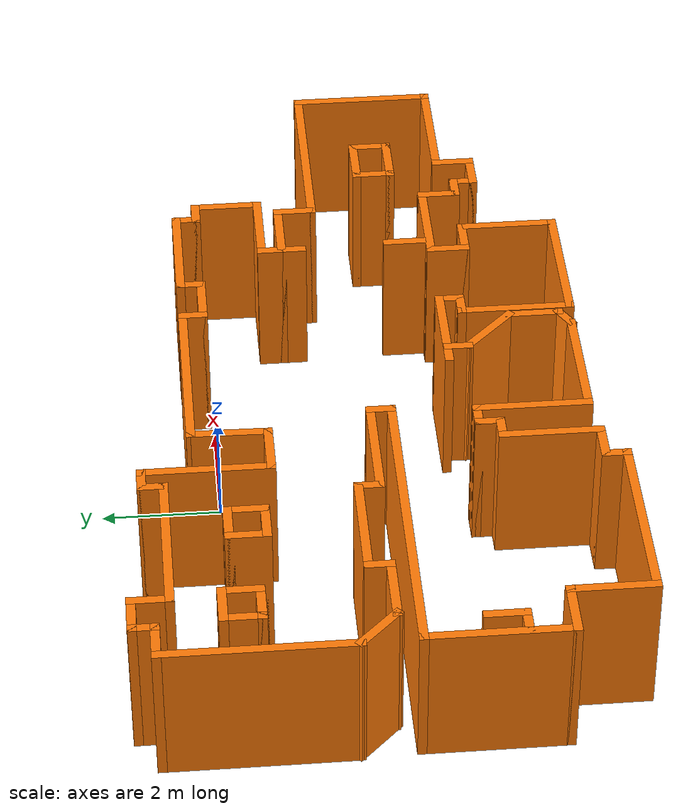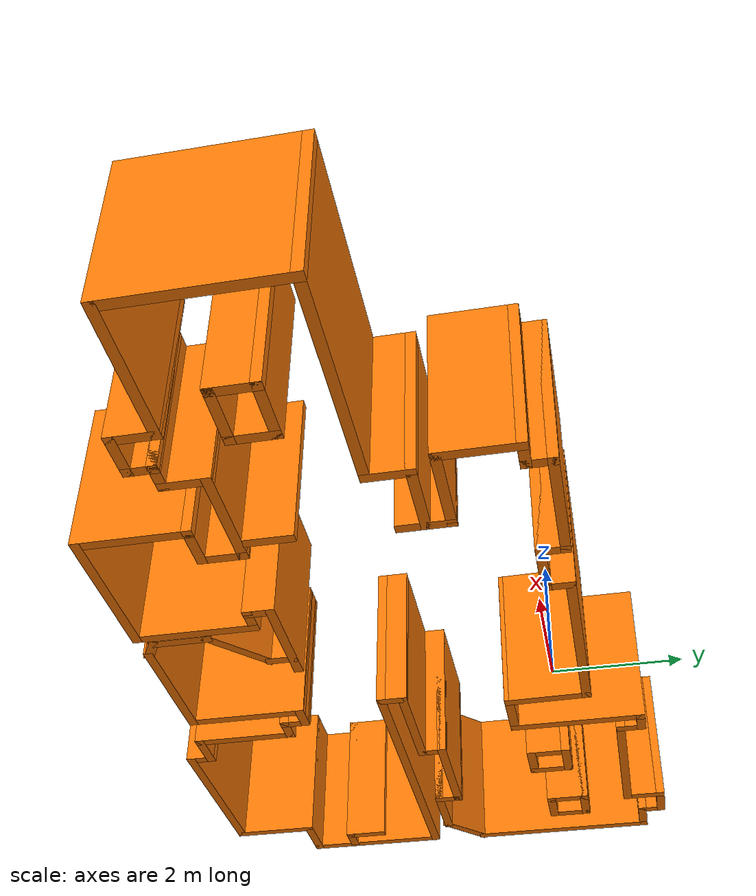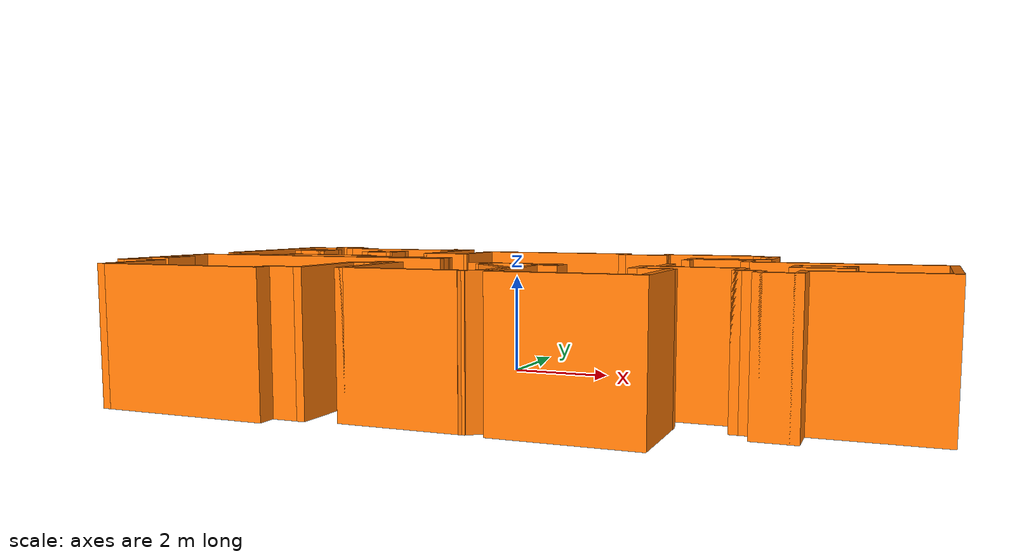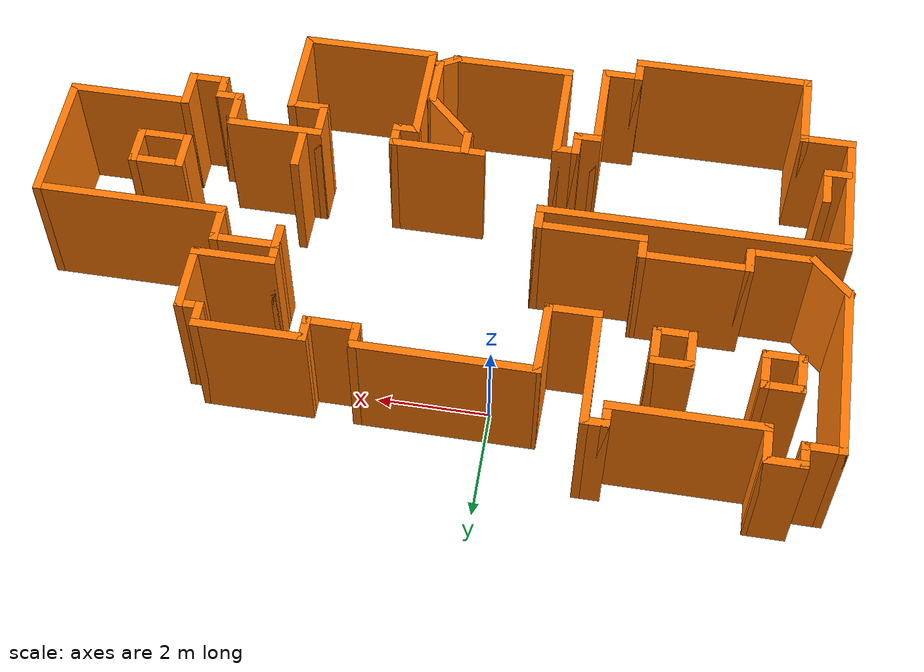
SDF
<?xml version='1.0'?>
<sdf version='1.6'>
  <model name='map_88'>
    <pose frame=''>1.27193 -2.48985 0 0 -0 0</pose>
    <link name='Wall_1'>
      <collision name='Wall_1_Collision'>
        <geometry>
          <box>
            <size>0.5 0.15 2.5</size>
          </box>
        </geometry>
        <pose frame=''>0 0 1.25 0 -0 0</pose>
      </collision>
      <visual name='Wall_1_Visual'>
        <pose frame=''>0 0 1.25 0 -0 0</pose>
        <geometry>
          <box>
            <size>0.5 0.15 2.5</size>
          </box>
        </geometry>
        <material>
          <script>
            <uri>file://media/materials/scripts/gazebo.material</uri>
            <name>Gazebo/Grey</name>
          </script>
          <ambient>0.996078 0.47451 0.0196078 1</ambient>
        </material>
        <meta>
          <layer>0</layer>
        </meta>
      </visual>
      <pose frame=''>-3.14645 3.80052 0 0 -0 3.14159</pose>
    </link>
    <link name='Wall_10'>
      <collision name='Wall_10_Collision'>
        <geometry>
          <box>
            <size>1.25 0.15 2.5</size>
          </box>
        </geometry>
        <pose frame=''>0 0 1.25 0 -0 0</pose>
      </collision>
      <visual name='Wall_10_Visual'>
        <pose frame=''>0 0 1.25 0 -0 0</pose>
        <geometry>
          <box>
            <size>1.25 0.15 2.5</size>
          </box>
        </geometry>
        <material>
          <script>
            <uri>file://media/materials/scripts/gazebo.material</uri>
            <name>Gazebo/Grey</name>
          </script>
          <ambient>0.996078 0.47451 0.0196078 1</ambient>
        </material>
        <meta>
          <layer>0</layer>
        </meta>
      </visual>
      <pose frame=''>-5.97041 -0.00052 0 0 -0 0</pose>
    </link>
    <link name='Wall_100'>
      <collision name='Wall_100_Collision'>
        <geometry>
          <box>
            <size>0.75 0.15 2.5</size>
          </box>
        </geometry>
        <pose frame=''>0 0 1.25 0 -0 0</pose>
      </collision>
      <visual name='Wall_100_Visual'>
        <pose frame=''>0 0 1.25 0 -0 0</pose>
        <geometry>
          <box>
            <size>0.75 0.15 2.5</size>
          </box>
        </geometry>
        <material>
          <script>
            <uri>file://media/materials/scripts/gazebo.material</uri>
            <name>Gazebo/Grey</name>
          </script>
          <ambient>0.996078 0.47451 0.0196078 1</ambient>
        </material>
        <meta>
          <layer>0</layer>
        </meta>
      </visual>
      <pose frame=''>-4.27435 2.46761 0 0 -0 3.14159</pose>
    </link>
    <link name='Wall_11'>
      <collision name='Wall_11_Collision'>
        <geometry>
          <box>
            <size>0.5 0.15 2.5</size>
          </box>
        </geometry>
        <pose frame=''>0 0 1.25 0 -0 0</pose>
      </collision>
      <visual name='Wall_11_Visual'>
        <pose frame=''>0 0 1.25 0 -0 0</pose>
        <geometry>
          <box>
            <size>0.5 0.15 2.5</size>
          </box>
        </geometry>
        <material>
          <script>
            <uri>file://media/materials/scripts/gazebo.material</uri>
            <name>Gazebo/Grey</name>
          </script>
          <ambient>0.996078 0.47451 0.0196078 1</ambient>
        </material>
        <meta>
          <layer>0</layer>
        </meta>
      </visual>
      <pose frame=''>-5.42041 0.17448 0 0 -0 1.5708</pose>
    </link>
    <link name='Wall_110'>
      <collision name='Wall_110_Collision'>
        <geometry>
          <box>
            <size>1.75 0.15 2.5</size>
          </box>
        </geometry>
        <pose frame=''>0 0 1.25 0 -0 0</pose>
      </collision>
      <visual name='Wall_110_Visual'>
        <pose frame=''>0 0 1.25 0 -0 0</pose>
        <geometry>
          <box>
            <size>1.75 0.15 2.5</size>
          </box>
        </geometry>
        <material>
          <script>
            <uri>file://media/materials/scripts/gazebo.material</uri>
            <name>Gazebo/Grey</name>
          </script>
          <ambient>0.996078 0.47451 0.0196078 1</ambient>
        </material>
        <meta>
          <layer>0</layer>
        </meta>
      </visual>
      <pose frame=''>-2.52041 -2.90052 0 0 -0 1.5708</pose>
    </link>
    <link name='Wall_111'>
      <collision name='Wall_111_Collision'>
        <geometry>
          <box>
            <size>0.5 0.15 2.5</size>
          </box>
        </geometry>
        <pose frame=''>0 0 1.25 0 -0 0</pose>
      </collision>
      <visual name='Wall_111_Visual'>
        <pose frame=''>0 0 1.25 0 -0 0</pose>
        <geometry>
          <box>
            <size>0.5 0.15 2.5</size>
          </box>
        </geometry>
        <material>
          <script>
            <uri>file://media/materials/scripts/gazebo.material</uri>
            <name>Gazebo/Grey</name>
          </script>
          <ambient>0.996078 0.47451 0.0196078 1</ambient>
        </material>
        <meta>
          <layer>0</layer>
        </meta>
      </visual>
      <pose frame=''>-2.34541 -2.10052 0 0 -0 0</pose>
    </link>
    <link name='Wall_112'>
      <collision name='Wall_112_Collision'>
        <geometry>
          <box>
            <size>0.5 0.15 2.5</size>
          </box>
        </geometry>
        <pose frame=''>0 0 1.25 0 -0 0</pose>
      </collision>
      <visual name='Wall_112_Visual'>
        <pose frame=''>0 0 1.25 0 -0 0</pose>
        <geometry>
          <box>
            <size>0.5 0.15 2.5</size>
          </box>
        </geometry>
        <material>
          <script>
            <uri>file://media/materials/scripts/gazebo.material</uri>
            <name>Gazebo/Grey</name>
          </script>
          <ambient>0.996078 0.47451 0.0196078 1</ambient>
        </material>
        <meta>
          <layer>0</layer>
        </meta>
      </visual>
      <pose frame=''>-2.17041 -1.92552 0 0 -0 1.5708</pose>
    </link>
    <link name='Wall_113'>
      <collision name='Wall_113_Collision'>
        <geometry>
          <box>
            <size>0.5 0.15 2.5</size>
          </box>
        </geometry>
        <pose frame=''>0 0 1.25 0 -0 0</pose>
      </collision>
      <visual name='Wall_113_Visual'>
        <pose frame=''>0 0 1.25 0 -0 0</pose>
        <geometry>
          <box>
            <size>0.5 0.15 2.5</size>
          </box>
        </geometry>
        <material>
          <script>
            <uri>file://media/materials/scripts/gazebo.material</uri>
            <name>Gazebo/Grey</name>
          </script>
          <ambient>0.996078 0.47451 0.0196078 1</ambient>
        </material>
        <meta>
          <layer>0</layer>
        </meta>
      </visual>
      <pose frame=''>-1.99541 -1.75052 0 0 -0 0</pose>
    </link>
    <link name='Wall_114'>
      <collision name='Wall_114_Collision'>
        <geometry>
          <box>
            <size>2 0.15 2.5</size>
          </box>
        </geometry>
        <pose frame=''>0 0 1.25 0 -0 0</pose>
      </collision>
      <visual name='Wall_114_Visual'>
        <pose frame=''>0 0 1.25 0 -0 0</pose>
        <geometry>
          <box>
            <size>2 0.15 2.5</size>
          </box>
        </geometry>
        <material>
          <script>
            <uri>file://media/materials/scripts/gazebo.material</uri>
            <name>Gazebo/Grey</name>
          </script>
          <ambient>0.996078 0.47451 0.0196078 1</ambient>
        </material>
        <meta>
          <layer>0</layer>
        </meta>
      </visual>
      <pose frame=''>-1.82041 -2.67552 0 0 -0 -1.5708</pose>
    </link>
    <link name='Wall_12'>
      <collision name='Wall_12_Collision'>
        <geometry>
          <box>
            <size>2 0.15 2.5</size>
          </box>
        </geometry>
        <pose frame=''>0 0 1.25 0 -0 0</pose>
      </collision>
      <visual name='Wall_12_Visual'>
        <pose frame=''>0 0 1.25 0 -0 0</pose>
        <geometry>
          <box>
            <size>2 0.15 2.5</size>
          </box>
        </geometry>
        <material>
          <script>
            <uri>file://media/materials/scripts/gazebo.material</uri>
            <name>Gazebo/Grey</name>
          </script>
          <ambient>0.996078 0.47451 0.0196078 1</ambient>
        </material>
        <meta>
          <layer>0</layer>
        </meta>
      </visual>
      <pose frame=''>-4.49541 0.34948 0 0 -0 0</pose>
    </link>
    <link name='Wall_13'>
      <collision name='Wall_13_Collision'>
        <geometry>
          <box>
            <size>0.5 0.15 2.5</size>
          </box>
        </geometry>
        <pose frame=''>0 0 1.25 0 -0 0</pose>
      </collision>
      <visual name='Wall_13_Visual'>
        <pose frame=''>0 0 1.25 0 -0 0</pose>
        <geometry>
          <box>
            <size>0.5 0.15 2.5</size>
          </box>
        </geometry>
        <material>
          <script>
            <uri>file://media/materials/scripts/gazebo.material</uri>
            <name>Gazebo/Grey</name>
          </script>
          <ambient>0.996078 0.47451 0.0196078 1</ambient>
        </material>
        <meta>
          <layer>0</layer>
        </meta>
      </visual>
      <pose frame=''>-3.57041 0.17448 0 0 -0 -1.5708</pose>
    </link>
    <link name='Wall_14'>
      <collision name='Wall_14_Collision'>
        <geometry>
          <box>
            <size>2 0.15 2.5</size>
          </box>
        </geometry>
        <pose frame=''>0 0 1.25 0 -0 0</pose>
      </collision>
      <visual name='Wall_14_Visual'>
        <pose frame=''>0 0 1.25 0 -0 0</pose>
        <geometry>
          <box>
            <size>2 0.15 2.5</size>
          </box>
        </geometry>
        <material>
          <script>
            <uri>file://media/materials/scripts/gazebo.material</uri>
            <name>Gazebo/Grey</name>
          </script>
          <ambient>0.996078 0.47451 0.0196078 1</ambient>
        </material>
        <meta>
          <layer>0</layer>
        </meta>
      </visual>
      <pose frame=''>-2.64541 -0.00052 0 0 -0 0</pose>
    </link>
    <link name='Wall_15'>
      <collision name='Wall_15_Collision'>
        <geometry>
          <box>
            <size>0.5 0.15 2.5</size>
          </box>
        </geometry>
        <pose frame=''>0 0 1.25 0 -0 0</pose>
      </collision>
      <visual name='Wall_15_Visual'>
        <pose frame=''>0 0 1.25 0 -0 0</pose>
        <geometry>
          <box>
            <size>0.5 0.15 2.5</size>
          </box>
        </geometry>
        <material>
          <script>
            <uri>file://media/materials/scripts/gazebo.material</uri>
            <name>Gazebo/Grey</name>
          </script>
          <ambient>0.996078 0.47451 0.0196078 1</ambient>
        </material>
        <meta>
          <layer>0</layer>
        </meta>
      </visual>
      <pose frame=''>-1.72041 -0.17552 0 0 -0 -1.5708</pose>
    </link>
    <link name='Wall_16'>
      <collision name='Wall_16_Collision'>
        <geometry>
          <box>
            <size>5.5 0.15 2.5</size>
          </box>
        </geometry>
        <pose frame=''>0 0 1.25 0 -0 0</pose>
      </collision>
      <visual name='Wall_16_Visual'>
        <pose frame=''>0 0 1.25 0 -0 0</pose>
        <geometry>
          <box>
            <size>5.5 0.15 2.5</size>
          </box>
        </geometry>
        <material>
          <script>
            <uri>file://media/materials/scripts/gazebo.material</uri>
            <name>Gazebo/Grey</name>
          </script>
          <ambient>0.996078 0.47451 0.0196078 1</ambient>
        </material>
        <meta>
          <layer>0</layer>
        </meta>
      </visual>
      <pose frame=''>-4.39541 -0.35052 0 0 -0 3.14159</pose>
    </link>
    <link name='Wall_17'>
      <collision name='Wall_17_Collision'>
        <geometry>
          <box>
            <size>2.5 0.15 2.5</size>
          </box>
        </geometry>
        <pose frame=''>0 0 1.25 0 -0 0</pose>
      </collision>
      <visual name='Wall_17_Visual'>
        <pose frame=''>0 0 1.25 0 -0 0</pose>
        <geometry>
          <box>
            <size>2.5 0.15 2.5</size>
          </box>
        </geometry>
        <material>
          <script>
            <uri>file://media/materials/scripts/gazebo.material</uri>
            <name>Gazebo/Grey</name>
          </script>
          <ambient>0.996078 0.47451 0.0196078 1</ambient>
        </material>
        <meta>
          <layer>0</layer>
        </meta>
      </visual>
      <pose frame=''>-7.07041 -1.52552 0 0 -0 -1.5708</pose>
    </link>
    <link name='Wall_18'>
      <collision name='Wall_18_Collision'>
        <geometry>
          <box>
            <size>1 0.15 2.5</size>
          </box>
        </geometry>
        <pose frame=''>0 0 1.25 0 -0 0</pose>
      </collision>
      <visual name='Wall_18_Visual'>
        <pose frame=''>0 0 1.25 0 -0 0</pose>
        <geometry>
          <box>
            <size>1 0.15 2.5</size>
          </box>
        </geometry>
        <material>
          <script>
            <uri>file://media/materials/scripts/gazebo.material</uri>
            <name>Gazebo/Grey</name>
          </script>
          <ambient>0.996078 0.47451 0.0196078 1</ambient>
        </material>
        <meta>
          <layer>0</layer>
        </meta>
      </visual>
      <pose frame=''>-6.64541 -2.70052 0 0 -0 0</pose>
    </link>
    <link name='Wall_19'>
      <collision name='Wall_19_Collision'>
        <geometry>
          <box>
            <size>1.5 0.15 2.5</size>
          </box>
        </geometry>
        <pose frame=''>0 0 1.25 0 -0 0</pose>
      </collision>
      <visual name='Wall_19_Visual'>
        <pose frame=''>0 0 1.25 0 -0 0</pose>
        <geometry>
          <box>
            <size>1.5 0.15 2.5</size>
          </box>
        </geometry>
        <material>
          <script>
            <uri>file://media/materials/scripts/gazebo.material</uri>
            <name>Gazebo/Grey</name>
          </script>
          <ambient>0.996078 0.47451 0.0196078 1</ambient>
        </material>
        <meta>
          <layer>0</layer>
        </meta>
      </visual>
      <pose frame=''>-6.22041 -3.37552 0 0 -0 -1.5708</pose>
    </link>
    <link name='Wall_2'>
      <collision name='Wall_2_Collision'>
        <geometry>
          <box>
            <size>0.5 0.15 2.5</size>
          </box>
        </geometry>
        <pose frame=''>0 0 1.25 0 -0 0</pose>
      </collision>
      <visual name='Wall_2_Visual'>
        <pose frame=''>0 0 1.25 0 -0 0</pose>
        <geometry>
          <box>
            <size>0.5 0.15 2.5</size>
          </box>
        </geometry>
        <material>
          <script>
            <uri>file://media/materials/scripts/gazebo.material</uri>
            <name>Gazebo/Grey</name>
          </script>
          <ambient>0.996078 0.47451 0.0196078 1</ambient>
        </material>
        <meta>
          <layer>0</layer>
        </meta>
      </visual>
      <pose frame=''>-3.32145 3.62552 0 0 -0 -1.5708</pose>
    </link>
    <link name='Wall_20'>
      <collision name='Wall_20_Collision'>
        <geometry>
          <box>
            <size>3.25 0.15 2.5</size>
          </box>
        </geometry>
        <pose frame=''>0 0 1.25 0 -0 0</pose>
      </collision>
      <visual name='Wall_20_Visual'>
        <pose frame=''>0 0 1.25 0 -0 0</pose>
        <geometry>
          <box>
            <size>3.25 0.15 2.5</size>
          </box>
        </geometry>
        <material>
          <script>
            <uri>file://media/materials/scripts/gazebo.material</uri>
            <name>Gazebo/Grey</name>
          </script>
          <ambient>0.996078 0.47451 0.0196078 1</ambient>
        </material>
        <meta>
          <layer>0</layer>
        </meta>
      </visual>
      <pose frame=''>-4.67041 -4.05052 0 0 -0 0</pose>
    </link>
    <link name='Wall_21'>
      <collision name='Wall_21_Collision'>
        <geometry>
          <box>
            <size>0.5 0.15 2.5</size>
          </box>
        </geometry>
        <pose frame=''>0 0 1.25 0 -0 0</pose>
      </collision>
      <visual name='Wall_21_Visual'>
        <pose frame=''>0 0 1.25 0 -0 0</pose>
        <geometry>
          <box>
            <size>0.5 0.15 2.5</size>
          </box>
        </geometry>
        <material>
          <script>
            <uri>file://media/materials/scripts/gazebo.material</uri>
            <name>Gazebo/Grey</name>
          </script>
          <ambient>0.996078 0.47451 0.0196078 1</ambient>
        </material>
        <meta>
          <layer>0</layer>
        </meta>
      </visual>
      <pose frame=''>-3.12041 -3.87552 0 0 -0 1.5708</pose>
    </link>
    <link name='Wall_22'>
      <collision name='Wall_22_Collision'>
        <geometry>
          <box>
            <size>0.75 0.15 2.5</size>
          </box>
        </geometry>
        <pose frame=''>0 0 1.25 0 -0 0</pose>
      </collision>
      <visual name='Wall_22_Visual'>
        <pose frame=''>0 0 1.25 0 -0 0</pose>
        <geometry>
          <box>
            <size>0.75 0.15 2.5</size>
          </box>
        </geometry>
        <material>
          <script>
            <uri>file://media/materials/scripts/gazebo.material</uri>
            <name>Gazebo/Grey</name>
          </script>
          <ambient>0.996078 0.47451 0.0196078 1</ambient>
        </material>
        <meta>
          <layer>0</layer>
        </meta>
      </visual>
      <pose frame=''>-2.82041 -3.70052 0 0 -0 0</pose>
    </link>
    <link name='Wall_28'>
      <collision name='Wall_28_Collision'>
        <geometry>
          <box>
            <size>2.25 0.15 2.5</size>
          </box>
        </geometry>
        <pose frame=''>0 0 1.25 0 -0 0</pose>
      </collision>
      <visual name='Wall_28_Visual'>
        <pose frame=''>0 0 1.25 0 -0 0</pose>
        <geometry>
          <box>
            <size>2.25 0.15 2.5</size>
          </box>
        </geometry>
        <material>
          <script>
            <uri>file://media/materials/scripts/gazebo.material</uri>
            <name>Gazebo/Grey</name>
          </script>
          <ambient>0.996078 0.47451 0.0196078 1</ambient>
        </material>
        <meta>
          <layer>0</layer>
        </meta>
      </visual>
      <pose frame=''>-0.770411 -3.60052 0 0 -0 0</pose>
    </link>
    <link name='Wall_29'>
      <collision name='Wall_29_Collision'>
        <geometry>
          <box>
            <size>0.5 0.15 2.5</size>
          </box>
        </geometry>
        <pose frame=''>0 0 1.25 0 -0 0</pose>
      </collision>
      <visual name='Wall_29_Visual'>
        <pose frame=''>0 0 1.25 0 -0 0</pose>
        <geometry>
          <box>
            <size>0.5 0.15 2.5</size>
          </box>
        </geometry>
        <material>
          <script>
            <uri>file://media/materials/scripts/gazebo.material</uri>
            <name>Gazebo/Grey</name>
          </script>
          <ambient>0.996078 0.47451 0.0196078 1</ambient>
        </material>
        <meta>
          <layer>0</layer>
        </meta>
      </visual>
      <pose frame=''>0.431144 -3.51302 0 0 -0 0.523599</pose>
    </link>
    <link name='Wall_3'>
      <collision name='Wall_3_Collision'>
        <geometry>
          <box>
            <size>2.75 0.15 2.5</size>
          </box>
        </geometry>
        <pose frame=''>0 0 1.25 0 -0 0</pose>
      </collision>
      <visual name='Wall_3_Visual'>
        <pose frame=''>0 0 1.25 0 -0 0</pose>
        <geometry>
          <box>
            <size>2.75 0.15 2.5</size>
          </box>
        </geometry>
        <material>
          <script>
            <uri>file://media/materials/scripts/gazebo.material</uri>
            <name>Gazebo/Grey</name>
          </script>
          <ambient>0.996078 0.47451 0.0196078 1</ambient>
        </material>
        <meta>
          <layer>0</layer>
        </meta>
      </visual>
      <pose frame=''>-4.62145 3.45052 0 0 -0 3.14159</pose>
    </link>
    <link name='Wall_30'>
      <collision name='Wall_30_Collision'>
        <geometry>
          <box>
            <size>1 0.15 2.5</size>
          </box>
        </geometry>
        <pose frame=''>0 0 1.25 0 -0 0</pose>
      </collision>
      <visual name='Wall_30_Visual'>
        <pose frame=''>0 0 1.25 0 -0 0</pose>
        <geometry>
          <box>
            <size>1 0.15 2.5</size>
          </box>
        </geometry>
        <material>
          <script>
            <uri>file://media/materials/scripts/gazebo.material</uri>
            <name>Gazebo/Grey</name>
          </script>
          <ambient>0.996078 0.47451 0.0196078 1</ambient>
        </material>
        <meta>
          <layer>0</layer>
        </meta>
      </visual>
      <pose frame=''>0.582698 -3.00052 0 0 -0 1.5708</pose>
    </link>
    <link name='Wall_31'>
      <collision name='Wall_31_Collision'>
        <geometry>
          <box>
            <size>1.25 0.15 2.5</size>
          </box>
        </geometry>
        <pose frame=''>0 0 1.25 0 -0 0</pose>
      </collision>
      <visual name='Wall_31_Visual'>
        <pose frame=''>0 0 1.25 0 -0 0</pose>
        <geometry>
          <box>
            <size>1.25 0.15 2.5</size>
          </box>
        </geometry>
        <material>
          <script>
            <uri>file://media/materials/scripts/gazebo.material</uri>
            <name>Gazebo/Grey</name>
          </script>
          <ambient>0.996078 0.47451 0.0196078 1</ambient>
        </material>
        <meta>
          <layer>0</layer>
        </meta>
      </visual>
      <pose frame=''>0.193789 -2.18661 0 0 -0 2.35619</pose>
    </link>
    <link name='Wall_32'>
      <collision name='Wall_32_Collision'>
        <geometry>
          <box>
            <size>0.5 0.15 2.5</size>
          </box>
        </geometry>
        <pose frame=''>0 0 1.25 0 -0 0</pose>
      </collision>
      <visual name='Wall_32_Visual'>
        <pose frame=''>0 0 1.25 0 -0 0</pose>
        <geometry>
          <box>
            <size>0.5 0.15 2.5</size>
          </box>
        </geometry>
        <material>
          <script>
            <uri>file://media/materials/scripts/gazebo.material</uri>
            <name>Gazebo/Grey</name>
          </script>
          <ambient>0.996078 0.47451 0.0196078 1</ambient>
        </material>
        <meta>
          <layer>0</layer>
        </meta>
      </visual>
      <pose frame=''>-0.19512 -1.6227 0 0 -0 1.5708</pose>
    </link>
    <link name='Wall_34'>
      <collision name='Wall_34_Collision'>
        <geometry>
          <box>
            <size>1.75 0.15 2.5</size>
          </box>
        </geometry>
        <pose frame=''>0 0 1.25 0 -0 0</pose>
      </collision>
      <visual name='Wall_34_Visual'>
        <pose frame=''>0 0 1.25 0 -0 0</pose>
        <geometry>
          <box>
            <size>1.75 0.15 2.5</size>
          </box>
        </geometry>
        <material>
          <script>
            <uri>file://media/materials/scripts/gazebo.material</uri>
            <name>Gazebo/Grey</name>
          </script>
          <ambient>0.996078 0.47451 0.0196078 1</ambient>
        </material>
        <meta>
          <layer>0</layer>
        </meta>
      </visual>
      <pose frame=''>0.302518 -1.4372 0 0 -0 0</pose>
    </link>
    <link name='Wall_35'>
      <collision name='Wall_35_Collision'>
        <geometry>
          <box>
            <size>0.5 0.15 2.5</size>
          </box>
        </geometry>
        <pose frame=''>0 0 1.25 0 -0 0</pose>
      </collision>
      <visual name='Wall_35_Visual'>
        <pose frame=''>0 0 1.25 0 -0 0</pose>
        <geometry>
          <box>
            <size>0.5 0.15 2.5</size>
          </box>
        </geometry>
        <material>
          <script>
            <uri>file://media/materials/scripts/gazebo.material</uri>
            <name>Gazebo/Grey</name>
          </script>
          <ambient>0.996078 0.47451 0.0196078 1</ambient>
        </material>
        <meta>
          <layer>0</layer>
        </meta>
      </visual>
      <pose frame=''>1.10252 -1.6122 0 0 -0 -1.5708</pose>
    </link>
    <link name='Wall_36'>
      <collision name='Wall_36_Collision'>
        <geometry>
          <box>
            <size>0.5 0.15 2.5</size>
          </box>
        </geometry>
        <pose frame=''>0 0 1.25 0 -0 0</pose>
      </collision>
      <visual name='Wall_36_Visual'>
        <pose frame=''>0 0 1.25 0 -0 0</pose>
        <geometry>
          <box>
            <size>0.5 0.15 2.5</size>
          </box>
        </geometry>
        <material>
          <script>
            <uri>file://media/materials/scripts/gazebo.material</uri>
            <name>Gazebo/Grey</name>
          </script>
          <ambient>0.996078 0.47451 0.0196078 1</ambient>
        </material>
        <meta>
          <layer>0</layer>
        </meta>
      </visual>
      <pose frame=''>0.927518 -1.7872 0 0 -0 3.14159</pose>
    </link>
    <link name='Wall_37'>
      <collision name='Wall_37_Collision'>
        <geometry>
          <box>
            <size>2 0.15 2.5</size>
          </box>
        </geometry>
        <pose frame=''>0 0 1.25 0 -0 0</pose>
      </collision>
      <visual name='Wall_37_Visual'>
        <pose frame=''>0 0 1.25 0 -0 0</pose>
        <geometry>
          <box>
            <size>2 0.15 2.5</size>
          </box>
        </geometry>
        <material>
          <script>
            <uri>file://media/materials/scripts/gazebo.material</uri>
            <name>Gazebo/Grey</name>
          </script>
          <ambient>0.996078 0.47451 0.0196078 1</ambient>
        </material>
        <meta>
          <layer>0</layer>
        </meta>
      </visual>
      <pose frame=''>0.752518 -2.7122 0 0 -0 -1.5708</pose>
    </link>
    <link name='Wall_38'>
      <collision name='Wall_38_Collision'>
        <geometry>
          <box>
            <size>2.5 0.15 2.5</size>
          </box>
        </geometry>
        <pose frame=''>0 0 1.25 0 -0 0</pose>
      </collision>
      <visual name='Wall_38_Visual'>
        <pose frame=''>0 0 1.25 0 -0 0</pose>
        <geometry>
          <box>
            <size>2.5 0.15 2.5</size>
          </box>
        </geometry>
        <material>
          <script>
            <uri>file://media/materials/scripts/gazebo.material</uri>
            <name>Gazebo/Grey</name>
          </script>
          <ambient>0.996078 0.47451 0.0196078 1</ambient>
        </material>
        <meta>
          <layer>0</layer>
        </meta>
      </visual>
      <pose frame=''>1.92752 -3.6372 0 0 -0 0</pose>
    </link>
    <link name='Wall_39'>
      <collision name='Wall_39_Collision'>
        <geometry>
          <box>
            <size>1.75 0.15 2.5</size>
          </box>
        </geometry>
        <pose frame=''>0 0 1.25 0 -0 0</pose>
      </collision>
      <visual name='Wall_39_Visual'>
        <pose frame=''>0 0 1.25 0 -0 0</pose>
        <geometry>
          <box>
            <size>1.75 0.15 2.5</size>
          </box>
        </geometry>
        <material>
          <script>
            <uri>file://media/materials/scripts/gazebo.material</uri>
            <name>Gazebo/Grey</name>
          </script>
          <ambient>0.996078 0.47451 0.0196078 1</ambient>
        </material>
        <meta>
          <layer>0</layer>
        </meta>
      </visual>
      <pose frame=''>3.10252 -2.8372 0 0 -0 1.5708</pose>
    </link>
    <link name='Wall_4'>
      <collision name='Wall_4_Collision'>
        <geometry>
          <box>
            <size>0.75 0.15 2.5</size>
          </box>
        </geometry>
        <pose frame=''>0 0 1.25 0 -0 0</pose>
      </collision>
      <visual name='Wall_4_Visual'>
        <pose frame=''>0 0 1.25 0 -0 0</pose>
        <geometry>
          <box>
            <size>0.75 0.15 2.5</size>
          </box>
        </geometry>
        <material>
          <script>
            <uri>file://media/materials/scripts/gazebo.material</uri>
            <name>Gazebo/Grey</name>
          </script>
          <ambient>0.996078 0.47451 0.0196078 1</ambient>
        </material>
        <meta>
          <layer>0</layer>
        </meta>
      </visual>
      <pose frame=''>-5.92145 3.75052 0 0 -0 1.5708</pose>
    </link>
    <link name='Wall_40'>
      <collision name='Wall_40_Collision'>
        <geometry>
          <box>
            <size>0.75 0.15 2.5</size>
          </box>
        </geometry>
        <pose frame=''>0 0 1.25 0 -0 0</pose>
      </collision>
      <visual name='Wall_40_Visual'>
        <pose frame=''>0 0 1.25 0 -0 0</pose>
        <geometry>
          <box>
            <size>0.75 0.15 2.5</size>
          </box>
        </geometry>
        <material>
          <script>
            <uri>file://media/materials/scripts/gazebo.material</uri>
            <name>Gazebo/Grey</name>
          </script>
          <ambient>0.996078 0.47451 0.0196078 1</ambient>
        </material>
        <meta>
          <layer>0</layer>
        </meta>
      </visual>
      <pose frame=''>2.80252 -2.0372 0 0 -0 3.14159</pose>
    </link>
    <link name='Wall_41'>
      <collision name='Wall_41_Collision'>
        <geometry>
          <box>
            <size>0.75 0.15 2.5</size>
          </box>
        </geometry>
        <pose frame=''>0 0 1.25 0 -0 0</pose>
      </collision>
      <visual name='Wall_41_Visual'>
        <pose frame=''>0 0 1.25 0 -0 0</pose>
        <geometry>
          <box>
            <size>0.75 0.15 2.5</size>
          </box>
        </geometry>
        <material>
          <script>
            <uri>file://media/materials/scripts/gazebo.material</uri>
            <name>Gazebo/Grey</name>
          </script>
          <ambient>0.996078 0.47451 0.0196078 1</ambient>
        </material>
        <meta>
          <layer>0</layer>
        </meta>
      </visual>
      <pose frame=''>2.50252 -1.7372 0 0 -0 1.5708</pose>
    </link>
    <link name='Wall_42'>
      <collision name='Wall_42_Collision'>
        <geometry>
          <box>
            <size>1.75 0.15 2.5</size>
          </box>
        </geometry>
        <pose frame=''>0 0 1.25 0 -0 0</pose>
      </collision>
      <visual name='Wall_42_Visual'>
        <pose frame=''>0 0 1.25 0 -0 0</pose>
        <geometry>
          <box>
            <size>1.75 0.15 2.5</size>
          </box>
        </geometry>
        <material>
          <script>
            <uri>file://media/materials/scripts/gazebo.material</uri>
            <name>Gazebo/Grey</name>
          </script>
          <ambient>0.996078 0.47451 0.0196078 1</ambient>
        </material>
        <meta>
          <layer>0</layer>
        </meta>
      </visual>
      <pose frame=''>3.30252 -1.4372 0 0 -0 0</pose>
    </link>
    <link name='Wall_43'>
      <collision name='Wall_43_Collision'>
        <geometry>
          <box>
            <size>0.75 0.15 2.5</size>
          </box>
        </geometry>
        <pose frame=''>0 0 1.25 0 -0 0</pose>
      </collision>
      <visual name='Wall_43_Visual'>
        <pose frame=''>0 0 1.25 0 -0 0</pose>
        <geometry>
          <box>
            <size>0.75 0.15 2.5</size>
          </box>
        </geometry>
        <material>
          <script>
            <uri>file://media/materials/scripts/gazebo.material</uri>
            <name>Gazebo/Grey</name>
          </script>
          <ambient>0.996078 0.47451 0.0196078 1</ambient>
        </material>
        <meta>
          <layer>0</layer>
        </meta>
      </visual>
      <pose frame=''>4.10252 -1.7372 0 0 -0 -1.5708</pose>
    </link>
    <link name='Wall_44'>
      <collision name='Wall_44_Collision'>
        <geometry>
          <box>
            <size>0.5 0.15 2.5</size>
          </box>
        </geometry>
        <pose frame=''>0 0 1.25 0 -0 0</pose>
      </collision>
      <visual name='Wall_44_Visual'>
        <pose frame=''>0 0 1.25 0 -0 0</pose>
        <geometry>
          <box>
            <size>0.5 0.15 2.5</size>
          </box>
        </geometry>
        <material>
          <script>
            <uri>file://media/materials/scripts/gazebo.material</uri>
            <name>Gazebo/Grey</name>
          </script>
          <ambient>0.996078 0.47451 0.0196078 1</ambient>
        </material>
        <meta>
          <layer>0</layer>
        </meta>
      </visual>
      <pose frame=''>4.27752 -2.0372 0 0 -0 0</pose>
    </link>
    <link name='Wall_45'>
      <collision name='Wall_45_Collision'>
        <geometry>
          <box>
            <size>0.5 0.15 2.5</size>
          </box>
        </geometry>
        <pose frame=''>0 0 1.25 0 -0 0</pose>
      </collision>
      <visual name='Wall_45_Visual'>
        <pose frame=''>0 0 1.25 0 -0 0</pose>
        <geometry>
          <box>
            <size>0.5 0.15 2.5</size>
          </box>
        </geometry>
        <material>
          <script>
            <uri>file://media/materials/scripts/gazebo.material</uri>
            <name>Gazebo/Grey</name>
          </script>
          <ambient>0.996078 0.47451 0.0196078 1</ambient>
        </material>
        <meta>
          <layer>0</layer>
        </meta>
      </visual>
      <pose frame=''>4.45252 -2.2122 0 0 -0 -1.5708</pose>
    </link>
    <link name='Wall_46'>
      <collision name='Wall_46_Collision'>
        <geometry>
          <box>
            <size>0.75 0.15 2.5</size>
          </box>
        </geometry>
        <pose frame=''>0 0 1.25 0 -0 0</pose>
      </collision>
      <visual name='Wall_46_Visual'>
        <pose frame=''>0 0 1.25 0 -0 0</pose>
        <geometry>
          <box>
            <size>0.75 0.15 2.5</size>
          </box>
        </geometry>
        <material>
          <script>
            <uri>file://media/materials/scripts/gazebo.material</uri>
            <name>Gazebo/Grey</name>
          </script>
          <ambient>0.996078 0.47451 0.0196078 1</ambient>
        </material>
        <meta>
          <layer>0</layer>
        </meta>
      </visual>
      <pose frame=''>4.75252 -2.3872 0 0 -0 0</pose>
    </link>
    <link name='Wall_47'>
      <collision name='Wall_47_Collision'>
        <geometry>
          <box>
            <size>0.75 0.15 2.5</size>
          </box>
        </geometry>
        <pose frame=''>0 0 1.25 0 -0 0</pose>
      </collision>
      <visual name='Wall_47_Visual'>
        <pose frame=''>0 0 1.25 0 -0 0</pose>
        <geometry>
          <box>
            <size>0.75 0.15 2.5</size>
          </box>
        </geometry>
        <material>
          <script>
            <uri>file://media/materials/scripts/gazebo.material</uri>
            <name>Gazebo/Grey</name>
          </script>
          <ambient>0.996078 0.47451 0.0196078 1</ambient>
        </material>
        <meta>
          <layer>0</layer>
        </meta>
      </visual>
      <pose frame=''>5.05252 -2.0872 0 0 -0 1.5708</pose>
    </link>
    <link name='Wall_48'>
      <collision name='Wall_48_Collision'>
        <geometry>
          <box>
            <size>2.25 0.15 2.5</size>
          </box>
        </geometry>
        <pose frame=''>0 0 1.25 0 -0 0</pose>
      </collision>
      <visual name='Wall_48_Visual'>
        <pose frame=''>0 0 1.25 0 -0 0</pose>
        <geometry>
          <box>
            <size>2.25 0.15 2.5</size>
          </box>
        </geometry>
        <material>
          <script>
            <uri>file://media/materials/scripts/gazebo.material</uri>
            <name>Gazebo/Grey</name>
          </script>
          <ambient>0.996078 0.47451 0.0196078 1</ambient>
        </material>
        <meta>
          <layer>0</layer>
        </meta>
      </visual>
      <pose frame=''>6.10252 -1.7872 0 0 -0 0</pose>
    </link>
    <link name='Wall_49'>
      <collision name='Wall_49_Collision'>
        <geometry>
          <box>
            <size>2.5 0.15 2.5</size>
          </box>
        </geometry>
        <pose frame=''>0 0 1.25 0 -0 0</pose>
      </collision>
      <visual name='Wall_49_Visual'>
        <pose frame=''>0 0 1.25 0 -0 0</pose>
        <geometry>
          <box>
            <size>2.5 0.15 2.5</size>
          </box>
        </geometry>
        <material>
          <script>
            <uri>file://media/materials/scripts/gazebo.material</uri>
            <name>Gazebo/Grey</name>
          </script>
          <ambient>0.996078 0.47451 0.0196078 1</ambient>
        </material>
        <meta>
          <layer>0</layer>
        </meta>
      </visual>
      <pose frame=''>7.15252 -0.612197 0 0 -0 1.5708</pose>
    </link>
    <link name='Wall_5'>
      <collision name='Wall_5_Collision'>
        <geometry>
          <box>
            <size>0.75 0.15 2.5</size>
          </box>
        </geometry>
        <pose frame=''>0 0 1.25 0 -0 0</pose>
      </collision>
      <visual name='Wall_5_Visual'>
        <pose frame=''>0 0 1.25 0 -0 0</pose>
        <geometry>
          <box>
            <size>0.75 0.15 2.5</size>
          </box>
        </geometry>
        <material>
          <script>
            <uri>file://media/materials/scripts/gazebo.material</uri>
            <name>Gazebo/Grey</name>
          </script>
          <ambient>0.996078 0.47451 0.0196078 1</ambient>
        </material>
        <meta>
          <layer>0</layer>
        </meta>
      </visual>
      <pose frame=''>-6.22145 4.05052 0 0 -0 3.14159</pose>
    </link>
    <link name='Wall_50'>
      <collision name='Wall_50_Collision'>
        <geometry>
          <box>
            <size>3.5 0.15 2.5</size>
          </box>
        </geometry>
        <pose frame=''>0 0 1.25 0 -0 0</pose>
      </collision>
      <visual name='Wall_50_Visual'>
        <pose frame=''>0 0 1.25 0 -0 0</pose>
        <geometry>
          <box>
            <size>3.5 0.15 2.5</size>
          </box>
        </geometry>
        <material>
          <script>
            <uri>file://media/materials/scripts/gazebo.material</uri>
            <name>Gazebo/Grey</name>
          </script>
          <ambient>0.996078 0.47451 0.0196078 1</ambient>
        </material>
        <meta>
          <layer>0</layer>
        </meta>
      </visual>
      <pose frame=''>5.47752 0.562803 0 0 -0 3.14159</pose>
    </link>
    <link name='Wall_51'>
      <collision name='Wall_51_Collision'>
        <geometry>
          <box>
            <size>0.75 0.15 2.5</size>
          </box>
        </geometry>
        <pose frame=''>0 0 1.25 0 -0 0</pose>
      </collision>
      <visual name='Wall_51_Visual'>
        <pose frame=''>0 0 1.25 0 -0 0</pose>
        <geometry>
          <box>
            <size>0.75 0.15 2.5</size>
          </box>
        </geometry>
        <material>
          <script>
            <uri>file://media/materials/scripts/gazebo.material</uri>
            <name>Gazebo/Grey</name>
          </script>
          <ambient>0.996078 0.47451 0.0196078 1</ambient>
        </material>
        <meta>
          <layer>0</layer>
        </meta>
      </visual>
      <pose frame=''>3.80252 0.862803 0 0 -0 1.5708</pose>
    </link>
    <link name='Wall_52'>
      <collision name='Wall_52_Collision'>
        <geometry>
          <box>
            <size>1.25 0.15 2.5</size>
          </box>
        </geometry>
        <pose frame=''>0 0 1.25 0 -0 0</pose>
      </collision>
      <visual name='Wall_52_Visual'>
        <pose frame=''>0 0 1.25 0 -0 0</pose>
        <geometry>
          <box>
            <size>1.25 0.15 2.5</size>
          </box>
        </geometry>
        <material>
          <script>
            <uri>file://media/materials/scripts/gazebo.material</uri>
            <name>Gazebo/Grey</name>
          </script>
          <ambient>0.996078 0.47451 0.0196078 1</ambient>
        </material>
        <meta>
          <layer>0</layer>
        </meta>
      </visual>
      <pose frame=''>3.25252 1.1628 0 0 -0 3.14159</pose>
    </link>
    <link name='Wall_57'>
      <collision name='Wall_57_Collision'>
        <geometry>
          <box>
            <size>0.5 0.15 2.5</size>
          </box>
        </geometry>
        <pose frame=''>0 0 1.25 0 -0 0</pose>
      </collision>
      <visual name='Wall_57_Visual'>
        <pose frame=''>0 0 1.25 0 -0 0</pose>
        <geometry>
          <box>
            <size>0.5 0.15 2.5</size>
          </box>
        </geometry>
        <material>
          <script>
            <uri>file://media/materials/scripts/gazebo.material</uri>
            <name>Gazebo/Grey</name>
          </script>
          <ambient>0.996078 0.47451 0.0196078 1</ambient>
        </material>
        <meta>
          <layer>0</layer>
        </meta>
      </visual>
      <pose frame=''>2.70252 1.3378 0 0 -0 1.5708</pose>
    </link>
    <link name='Wall_58'>
      <collision name='Wall_58_Collision'>
        <geometry>
          <box>
            <size>1.5 0.15 2.5</size>
          </box>
        </geometry>
        <pose frame=''>0 0 1.25 0 -0 0</pose>
      </collision>
      <visual name='Wall_58_Visual'>
        <pose frame=''>0 0 1.25 0 -0 0</pose>
        <geometry>
          <box>
            <size>1.5 0.15 2.5</size>
          </box>
        </geometry>
        <material>
          <script>
            <uri>file://media/materials/scripts/gazebo.material</uri>
            <name>Gazebo/Grey</name>
          </script>
          <ambient>0.996078 0.47451 0.0196078 1</ambient>
        </material>
        <meta>
          <layer>0</layer>
        </meta>
      </visual>
      <pose frame=''>3.37752 1.5128 0 0 -0 0</pose>
    </link>
    <link name='Wall_59'>
      <collision name='Wall_59_Collision'>
        <geometry>
          <box>
            <size>1.25 0.15 2.5</size>
          </box>
        </geometry>
        <pose frame=''>0 0 1.25 0 -0 0</pose>
      </collision>
      <visual name='Wall_59_Visual'>
        <pose frame=''>0 0 1.25 0 -0 0</pose>
        <geometry>
          <box>
            <size>1.25 0.15 2.5</size>
          </box>
        </geometry>
        <material>
          <script>
            <uri>file://media/materials/scripts/gazebo.material</uri>
            <name>Gazebo/Grey</name>
          </script>
          <ambient>0.996078 0.47451 0.0196078 1</ambient>
        </material>
        <meta>
          <layer>0</layer>
        </meta>
      </visual>
      <pose frame=''>4.05252 2.0628 0 0 -0 1.5708</pose>
    </link>
    <link name='Wall_6'>
      <collision name='Wall_6_Collision'>
        <geometry>
          <box>
            <size>0.5 0.15 2.5</size>
          </box>
        </geometry>
        <pose frame=''>0 0 1.25 0 -0 0</pose>
      </collision>
      <visual name='Wall_6_Visual'>
        <pose frame=''>0 0 1.25 0 -0 0</pose>
        <geometry>
          <box>
            <size>0.5 0.15 2.5</size>
          </box>
        </geometry>
        <material>
          <script>
            <uri>file://media/materials/scripts/gazebo.material</uri>
            <name>Gazebo/Grey</name>
          </script>
          <ambient>0.996078 0.47451 0.0196078 1</ambient>
        </material>
        <meta>
          <layer>0</layer>
        </meta>
      </visual>
      <pose frame=''>-6.52145 3.87552 0 0 -0 -1.5708</pose>
    </link>
    <link name='Wall_60'>
      <collision name='Wall_60_Collision'>
        <geometry>
          <box>
            <size>0.5 0.15 2.5</size>
          </box>
        </geometry>
        <pose frame=''>0 0 1.25 0 -0 0</pose>
      </collision>
      <visual name='Wall_60_Visual'>
        <pose frame=''>0 0 1.25 0 -0 0</pose>
        <geometry>
          <box>
            <size>0.5 0.15 2.5</size>
          </box>
        </geometry>
        <material>
          <script>
            <uri>file://media/materials/scripts/gazebo.material</uri>
            <name>Gazebo/Grey</name>
          </script>
          <ambient>0.996078 0.47451 0.0196078 1</ambient>
        </material>
        <meta>
          <layer>0</layer>
        </meta>
      </visual>
      <pose frame=''>3.87752 2.6128 0 0 -0 3.14159</pose>
    </link>
    <link name='Wall_61'>
      <collision name='Wall_61_Collision'>
        <geometry>
          <box>
            <size>0.5 0.15 2.5</size>
          </box>
        </geometry>
        <pose frame=''>0 0 1.25 0 -0 0</pose>
      </collision>
      <visual name='Wall_61_Visual'>
        <pose frame=''>0 0 1.25 0 -0 0</pose>
        <geometry>
          <box>
            <size>0.5 0.15 2.5</size>
          </box>
        </geometry>
        <material>
          <script>
            <uri>file://media/materials/scripts/gazebo.material</uri>
            <name>Gazebo/Grey</name>
          </script>
          <ambient>0.996078 0.47451 0.0196078 1</ambient>
        </material>
        <meta>
          <layer>0</layer>
        </meta>
      </visual>
      <pose frame=''>3.70252 2.7878 0 0 -0 1.5708</pose>
    </link>
    <link name='Wall_62'>
      <collision name='Wall_62_Collision'>
        <geometry>
          <box>
            <size>2 0.15 2.5</size>
          </box>
        </geometry>
        <pose frame=''>0 0 1.25 0 -0 0</pose>
      </collision>
      <visual name='Wall_62_Visual'>
        <pose frame=''>0 0 1.25 0 -0 0</pose>
        <geometry>
          <box>
            <size>2 0.15 2.5</size>
          </box>
        </geometry>
        <material>
          <script>
            <uri>file://media/materials/scripts/gazebo.material</uri>
            <name>Gazebo/Grey</name>
          </script>
          <ambient>0.996078 0.47451 0.0196078 1</ambient>
        </material>
        <meta>
          <layer>0</layer>
        </meta>
      </visual>
      <pose frame=''>2.77752 2.9628 0 0 -0 3.14159</pose>
    </link>
    <link name='Wall_63'>
      <collision name='Wall_63_Collision'>
        <geometry>
          <box>
            <size>0.5 0.15 2.5</size>
          </box>
        </geometry>
        <pose frame=''>0 0 1.25 0 -0 0</pose>
      </collision>
      <visual name='Wall_63_Visual'>
        <pose frame=''>0 0 1.25 0 -0 0</pose>
        <geometry>
          <box>
            <size>0.5 0.15 2.5</size>
          </box>
        </geometry>
        <material>
          <script>
            <uri>file://media/materials/scripts/gazebo.material</uri>
            <name>Gazebo/Grey</name>
          </script>
          <ambient>0.996078 0.47451 0.0196078 1</ambient>
        </material>
        <meta>
          <layer>0</layer>
        </meta>
      </visual>
      <pose frame=''>1.85252 2.7878 0 0 -0 -1.5708</pose>
    </link>
    <link name='Wall_64'>
      <collision name='Wall_64_Collision'>
        <geometry>
          <box>
            <size>1 0.15 2.5</size>
          </box>
        </geometry>
        <pose frame=''>0 0 1.25 0 -0 0</pose>
      </collision>
      <visual name='Wall_64_Visual'>
        <pose frame=''>0 0 1.25 0 -0 0</pose>
        <geometry>
          <box>
            <size>1 0.15 2.5</size>
          </box>
        </geometry>
        <material>
          <script>
            <uri>file://media/materials/scripts/gazebo.material</uri>
            <name>Gazebo/Grey</name>
          </script>
          <ambient>0.996078 0.47451 0.0196078 1</ambient>
        </material>
        <meta>
          <layer>0</layer>
        </meta>
      </visual>
      <pose frame=''>1.42752 2.6128 0 0 -0 3.14159</pose>
    </link>
    <link name='Wall_65'>
      <collision name='Wall_65_Collision'>
        <geometry>
          <box>
            <size>0.5 0.15 2.5</size>
          </box>
        </geometry>
        <pose frame=''>0 0 1.25 0 -0 0</pose>
      </collision>
      <visual name='Wall_65_Visual'>
        <pose frame=''>0 0 1.25 0 -0 0</pose>
        <geometry>
          <box>
            <size>0.5 0.15 2.5</size>
          </box>
        </geometry>
        <material>
          <script>
            <uri>file://media/materials/scripts/gazebo.material</uri>
            <name>Gazebo/Grey</name>
          </script>
          <ambient>0.996078 0.47451 0.0196078 1</ambient>
        </material>
        <meta>
          <layer>0</layer>
        </meta>
      </visual>
      <pose frame=''>1.00252 2.7878 0 0 -0 1.5708</pose>
    </link>
    <link name='Wall_66'>
      <collision name='Wall_66_Collision'>
        <geometry>
          <box>
            <size>3.25 0.15 2.5</size>
          </box>
        </geometry>
        <pose frame=''>0 0 1.25 0 -0 0</pose>
      </collision>
      <visual name='Wall_66_Visual'>
        <pose frame=''>0 0 1.25 0 -0 0</pose>
        <geometry>
          <box>
            <size>3.25 0.15 2.5</size>
          </box>
        </geometry>
        <material>
          <script>
            <uri>file://media/materials/scripts/gazebo.material</uri>
            <name>Gazebo/Grey</name>
          </script>
          <ambient>0.996078 0.47451 0.0196078 1</ambient>
        </material>
        <meta>
          <layer>0</layer>
        </meta>
      </visual>
      <pose frame=''>-0.547482 2.9628 0 0 -0 3.14159</pose>
    </link>
    <link name='Wall_7'>
      <collision name='Wall_7_Collision'>
        <geometry>
          <box>
            <size>0.75 0.15 2.5</size>
          </box>
        </geometry>
        <pose frame=''>0 0 1.25 0 -0 0</pose>
      </collision>
      <visual name='Wall_7_Visual'>
        <pose frame=''>0 0 1.25 0 -0 0</pose>
        <geometry>
          <box>
            <size>0.75 0.15 2.5</size>
          </box>
        </geometry>
        <material>
          <script>
            <uri>file://media/materials/scripts/gazebo.material</uri>
            <name>Gazebo/Grey</name>
          </script>
          <ambient>0.996078 0.47451 0.0196078 1</ambient>
        </material>
        <meta>
          <layer>0</layer>
        </meta>
      </visual>
      <pose frame=''>-6.82145 3.70052 0 0 -0 3.14159</pose>
    </link>
    <link name='Wall_72'>
      <collision name='Wall_72_Collision'>
        <geometry>
          <box>
            <size>2.25 0.15 2.5</size>
          </box>
        </geometry>
        <pose frame=''>0 0 1.25 0 -0 0</pose>
      </collision>
      <visual name='Wall_72_Visual'>
        <pose frame=''>0 0 1.25 0 -0 0</pose>
        <geometry>
          <box>
            <size>2.25 0.15 2.5</size>
          </box>
        </geometry>
        <material>
          <script>
            <uri>file://media/materials/scripts/gazebo.material</uri>
            <name>Gazebo/Grey</name>
          </script>
          <ambient>0.996078 0.47451 0.0196078 1</ambient>
        </material>
        <meta>
          <layer>0</layer>
        </meta>
      </visual>
      <pose frame=''>-2.97145 2.75052 0 0 -0 -1.5708</pose>
    </link>
    <link name='Wall_74'>
      <collision name='Wall_74_Collision'>
        <geometry>
          <box>
            <size>1 0.15 2.5</size>
          </box>
        </geometry>
        <pose frame=''>0 0 1.25 0 -0 0</pose>
      </collision>
      <visual name='Wall_74_Visual'>
        <pose frame=''>0 0 1.25 0 -0 0</pose>
        <geometry>
          <box>
            <size>1 0.15 2.5</size>
          </box>
        </geometry>
        <material>
          <script>
            <uri>file://media/materials/scripts/gazebo.material</uri>
            <name>Gazebo/Grey</name>
          </script>
          <ambient>0.996078 0.47451 0.0196078 1</ambient>
        </material>
        <meta>
          <layer>0</layer>
        </meta>
      </visual>
      <pose frame=''>-2.54645 1.70052 0 0 -0 0</pose>
    </link>
    <link name='Wall_75'>
      <collision name='Wall_75_Collision'>
        <geometry>
          <box>
            <size>1.41251 0.15 2.5</size>
          </box>
        </geometry>
        <pose frame=''>0 0 1.25 0 -0 0</pose>
      </collision>
      <visual name='Wall_75_Visual'>
        <pose frame=''>0 0 1.25 0 -0 0</pose>
        <geometry>
          <box>
            <size>1.41251 0.15 2.5</size>
          </box>
        </geometry>
        <material>
          <script>
            <uri>file://media/materials/scripts/gazebo.material</uri>
            <name>Gazebo/Grey</name>
          </script>
          <ambient>0.996078 0.47451 0.0196078 1</ambient>
        </material>
        <meta>
          <layer>0</layer>
        </meta>
      </visual>
      <pose frame=''>-2.10947 2.33166 0 0 -0 1.55181</pose>
    </link>
    <link name='Wall_77'>
      <collision name='Wall_77_Collision'>
        <geometry>
          <box>
            <size>0.5 0.15 2.5</size>
          </box>
        </geometry>
        <pose frame=''>0 0 1.25 0 -0 0</pose>
      </collision>
      <visual name='Wall_77_Visual'>
        <pose frame=''>0 0 1.25 0 -0 0</pose>
        <geometry>
          <box>
            <size>0.5 0.15 2.5</size>
          </box>
        </geometry>
        <material>
          <script>
            <uri>file://media/materials/scripts/gazebo.material</uri>
            <name>Gazebo/Grey</name>
          </script>
          <ambient>0.996078 0.47451 0.0196078 1</ambient>
        </material>
        <meta>
          <layer>0</layer>
        </meta>
      </visual>
      <pose frame=''>2.70252 0.987803 0 0 -0 -1.5708</pose>
    </link>
    <link name='Wall_8'>
      <collision name='Wall_8_Collision'>
        <geometry>
          <box>
            <size>3.25 0.15 2.5</size>
          </box>
        </geometry>
        <pose frame=''>0 0 1.25 0 -0 0</pose>
      </collision>
      <visual name='Wall_8_Visual'>
        <pose frame=''>0 0 1.25 0 -0 0</pose>
        <geometry>
          <box>
            <size>3.25 0.15 2.5</size>
          </box>
        </geometry>
        <material>
          <script>
            <uri>file://media/materials/scripts/gazebo.material</uri>
            <name>Gazebo/Grey</name>
          </script>
          <ambient>0.996078 0.47451 0.0196078 1</ambient>
        </material>
        <meta>
          <layer>0</layer>
        </meta>
      </visual>
      <pose frame=''>-7.12145 2.15052 0 0 -0 -1.5708</pose>
    </link>
    <link name='Wall_82'>
      <collision name='Wall_82_Collision'>
        <geometry>
          <box>
            <size>0.75 0.15 2.5</size>
          </box>
        </geometry>
        <pose frame=''>0 0 1.25 0 -0 0</pose>
      </collision>
      <visual name='Wall_82_Visual'>
        <pose frame=''>0 0 1.25 0 -0 0</pose>
        <geometry>
          <box>
            <size>0.75 0.15 2.5</size>
          </box>
        </geometry>
        <material>
          <script>
            <uri>file://media/materials/scripts/gazebo.material</uri>
            <name>Gazebo/Grey</name>
          </script>
          <ambient>0.996078 0.47451 0.0196078 1</ambient>
        </material>
        <meta>
          <layer>0</layer>
        </meta>
      </visual>
      <pose frame=''>2.76334 -0.99794 0 0 -0 -1.5708</pose>
    </link>
    <link name='Wall_84'>
      <collision name='Wall_84_Collision'>
        <geometry>
          <box>
            <size>0.5 0.15 2.5</size>
          </box>
        </geometry>
        <pose frame=''>0 0 1.25 0 -0 0</pose>
      </collision>
      <visual name='Wall_84_Visual'>
        <pose frame=''>0 0 1.25 0 -0 0</pose>
        <geometry>
          <box>
            <size>0.5 0.15 2.5</size>
          </box>
        </geometry>
        <material>
          <script>
            <uri>file://media/materials/scripts/gazebo.material</uri>
            <name>Gazebo/Grey</name>
          </script>
          <ambient>0.996078 0.47451 0.0196078 1</ambient>
        </material>
        <meta>
          <layer>0</layer>
        </meta>
      </visual>
      <pose frame=''>-6.84591 -1.97012 0 0 -0 0</pose>
    </link>
    <link name='Wall_85'>
      <collision name='Wall_85_Collision'>
        <geometry>
          <box>
            <size>0.75 0.15 2.5</size>
          </box>
        </geometry>
        <pose frame=''>0 0 1.25 0 -0 0</pose>
      </collision>
      <visual name='Wall_85_Visual'>
        <pose frame=''>0 0 1.25 0 -0 0</pose>
        <geometry>
          <box>
            <size>0.75 0.15 2.5</size>
          </box>
        </geometry>
        <material>
          <script>
            <uri>file://media/materials/scripts/gazebo.material</uri>
            <name>Gazebo/Grey</name>
          </script>
          <ambient>0.996078 0.47451 0.0196078 1</ambient>
        </material>
        <meta>
          <layer>0</layer>
        </meta>
      </visual>
      <pose frame=''>-6.67091 -1.67012 0 0 -0 1.5708</pose>
    </link>
    <link name='Wall_87'>
      <collision name='Wall_87_Collision'>
        <geometry>
          <box>
            <size>0.75 0.15 2.5</size>
          </box>
        </geometry>
        <pose frame=''>0 0 1.25 0 -0 0</pose>
      </collision>
      <visual name='Wall_87_Visual'>
        <pose frame=''>0 0 1.25 0 -0 0</pose>
        <geometry>
          <box>
            <size>0.75 0.15 2.5</size>
          </box>
        </geometry>
        <material>
          <script>
            <uri>file://media/materials/scripts/gazebo.material</uri>
            <name>Gazebo/Grey</name>
          </script>
          <ambient>0.996078 0.47451 0.0196078 1</ambient>
        </material>
        <meta>
          <layer>0</layer>
        </meta>
      </visual>
      <pose frame=''>4.79883 -0.62785 0 0 -0 -1.5708</pose>
    </link>
    <link name='Wall_88'>
      <collision name='Wall_88_Collision'>
        <geometry>
          <box>
            <size>1 0.15 2.5</size>
          </box>
        </geometry>
        <pose frame=''>0 0 1.25 0 -0 0</pose>
      </collision>
      <visual name='Wall_88_Visual'>
        <pose frame=''>0 0 1.25 0 -0 0</pose>
        <geometry>
          <box>
            <size>1 0.15 2.5</size>
          </box>
        </geometry>
        <material>
          <script>
            <uri>file://media/materials/scripts/gazebo.material</uri>
            <name>Gazebo/Grey</name>
          </script>
          <ambient>0.996078 0.47451 0.0196078 1</ambient>
        </material>
        <meta>
          <layer>0</layer>
        </meta>
      </visual>
      <pose frame=''>5.22383 -0.927851 0 0 -0 0</pose>
    </link>
    <link name='Wall_89'>
      <collision name='Wall_89_Collision'>
        <geometry>
          <box>
            <size>0.75 0.15 2.5</size>
          </box>
        </geometry>
        <pose frame=''>0 0 1.25 0 -0 0</pose>
      </collision>
      <visual name='Wall_89_Visual'>
        <pose frame=''>0 0 1.25 0 -0 0</pose>
        <geometry>
          <box>
            <size>0.75 0.15 2.5</size>
          </box>
        </geometry>
        <material>
          <script>
            <uri>file://media/materials/scripts/gazebo.material</uri>
            <name>Gazebo/Grey</name>
          </script>
          <ambient>0.996078 0.47451 0.0196078 1</ambient>
        </material>
        <meta>
          <layer>0</layer>
        </meta>
      </visual>
      <pose frame=''>5.64883 -0.62785 0 0 -0 1.5708</pose>
    </link>
    <link name='Wall_9'>
      <collision name='Wall_9_Collision'>
        <geometry>
          <box>
            <size>1 0.15 2.5</size>
          </box>
        </geometry>
        <pose frame=''>0 0 1.25 0 -0 0</pose>
      </collision>
      <visual name='Wall_9_Visual'>
        <pose frame=''>0 0 1.25 0 -0 0</pose>
        <geometry>
          <box>
            <size>1 0.15 2.5</size>
          </box>
        </geometry>
        <material>
          <script>
            <uri>file://media/materials/scripts/gazebo.material</uri>
            <name>Gazebo/Grey</name>
          </script>
          <ambient>0.996078 0.47451 0.0196078 1</ambient>
        </material>
        <meta>
          <layer>0</layer>
        </meta>
      </visual>
      <pose frame=''>-6.82093 0.3 0 0 -0 -0.785398</pose>
    </link>
    <link name='Wall_90'>
      <collision name='Wall_90_Collision'>
        <geometry>
          <box>
            <size>1 0.15 2.5</size>
          </box>
        </geometry>
        <pose frame=''>0 0 1.25 0 -0 0</pose>
      </collision>
      <visual name='Wall_90_Visual'>
        <pose frame=''>0 0 1.25 0 -0 0</pose>
        <geometry>
          <box>
            <size>1 0.15 2.5</size>
          </box>
        </geometry>
        <material>
          <script>
            <uri>file://media/materials/scripts/gazebo.material</uri>
            <name>Gazebo/Grey</name>
          </script>
          <ambient>0.996078 0.47451 0.0196078 1</ambient>
        </material>
        <meta>
          <layer>0</layer>
        </meta>
      </visual>
      <pose frame=''>5.22383 -0.32785 0 0 -0 3.14159</pose>
    </link>
    <link name='Wall_92'>
      <collision name='Wall_92_Collision'>
        <geometry>
          <box>
            <size>0.75 0.15 2.5</size>
          </box>
        </geometry>
        <pose frame=''>0 0 1.25 0 -0 0</pose>
      </collision>
      <visual name='Wall_92_Visual'>
        <pose frame=''>0 0 1.25 0 -0 0</pose>
        <geometry>
          <box>
            <size>0.75 0.15 2.5</size>
          </box>
        </geometry>
        <material>
          <script>
            <uri>file://media/materials/scripts/gazebo.material</uri>
            <name>Gazebo/Grey</name>
          </script>
          <ambient>0.996078 0.47451 0.0196078 1</ambient>
        </material>
        <meta>
          <layer>0</layer>
        </meta>
      </visual>
      <pose frame=''>-6.40976 2.35115 0 0 -0 -1.5708</pose>
    </link>
    <link name='Wall_93'>
      <collision name='Wall_93_Collision'>
        <geometry>
          <box>
            <size>0.75 0.15 2.5</size>
          </box>
        </geometry>
        <pose frame=''>0 0 1.25 0 -0 0</pose>
      </collision>
      <visual name='Wall_93_Visual'>
        <pose frame=''>0 0 1.25 0 -0 0</pose>
        <geometry>
          <box>
            <size>0.75 0.15 2.5</size>
          </box>
        </geometry>
        <material>
          <script>
            <uri>file://media/materials/scripts/gazebo.material</uri>
            <name>Gazebo/Grey</name>
          </script>
          <ambient>0.996078 0.47451 0.0196078 1</ambient>
        </material>
        <meta>
          <layer>0</layer>
        </meta>
      </visual>
      <pose frame=''>-6.10976 2.05115 0 0 -0 0</pose>
    </link>
    <link name='Wall_94'>
      <collision name='Wall_94_Collision'>
        <geometry>
          <box>
            <size>0.75 0.15 2.5</size>
          </box>
        </geometry>
        <pose frame=''>0 0 1.25 0 -0 0</pose>
      </collision>
      <visual name='Wall_94_Visual'>
        <pose frame=''>0 0 1.25 0 -0 0</pose>
        <geometry>
          <box>
            <size>0.75 0.15 2.5</size>
          </box>
        </geometry>
        <material>
          <script>
            <uri>file://media/materials/scripts/gazebo.material</uri>
            <name>Gazebo/Grey</name>
          </script>
          <ambient>0.996078 0.47451 0.0196078 1</ambient>
        </material>
        <meta>
          <layer>0</layer>
        </meta>
      </visual>
      <pose frame=''>-5.80976 2.35115 0 0 -0 1.5708</pose>
    </link>
    <link name='Wall_95'>
      <collision name='Wall_95_Collision'>
        <geometry>
          <box>
            <size>0.75 0.15 2.5</size>
          </box>
        </geometry>
        <pose frame=''>0 0 1.25 0 -0 0</pose>
      </collision>
      <visual name='Wall_95_Visual'>
        <pose frame=''>0 0 1.25 0 -0 0</pose>
        <geometry>
          <box>
            <size>0.75 0.15 2.5</size>
          </box>
        </geometry>
        <material>
          <script>
            <uri>file://media/materials/scripts/gazebo.material</uri>
            <name>Gazebo/Grey</name>
          </script>
          <ambient>0.996078 0.47451 0.0196078 1</ambient>
        </material>
        <meta>
          <layer>0</layer>
        </meta>
      </visual>
      <pose frame=''>-6.10976 2.65115 0 0 -0 3.14159</pose>
    </link>
    <link name='Wall_97'>
      <collision name='Wall_97_Collision'>
        <geometry>
          <box>
            <size>0.75 0.15 2.5</size>
          </box>
        </geometry>
        <pose frame=''>0 0 1.25 0 -0 0</pose>
      </collision>
      <visual name='Wall_97_Visual'>
        <pose frame=''>0 0 1.25 0 -0 0</pose>
        <geometry>
          <box>
            <size>0.75 0.15 2.5</size>
          </box>
        </geometry>
        <material>
          <script>
            <uri>file://media/materials/scripts/gazebo.material</uri>
            <name>Gazebo/Grey</name>
          </script>
          <ambient>0.996078 0.47451 0.0196078 1</ambient>
        </material>
        <meta>
          <layer>0</layer>
        </meta>
      </visual>
      <pose frame=''>-4.57435 2.16761 0 0 -0 -1.5708</pose>
    </link>
    <link name='Wall_98'>
      <collision name='Wall_98_Collision'>
        <geometry>
          <box>
            <size>0.75 0.15 2.5</size>
          </box>
        </geometry>
        <pose frame=''>0 0 1.25 0 -0 0</pose>
      </collision>
      <visual name='Wall_98_Visual'>
        <pose frame=''>0 0 1.25 0 -0 0</pose>
        <geometry>
          <box>
            <size>0.75 0.15 2.5</size>
          </box>
        </geometry>
        <material>
          <script>
            <uri>file://media/materials/scripts/gazebo.material</uri>
            <name>Gazebo/Grey</name>
          </script>
          <ambient>0.996078 0.47451 0.0196078 1</ambient>
        </material>
        <meta>
          <layer>0</layer>
        </meta>
      </visual>
      <pose frame=''>-4.27435 1.86761 0 0 -0 0</pose>
    </link>
    <link name='Wall_99'>
      <collision name='Wall_99_Collision'>
        <geometry>
          <box>
            <size>0.75 0.15 2.5</size>
          </box>
        </geometry>
        <pose frame=''>0 0 1.25 0 -0 0</pose>
      </collision>
      <visual name='Wall_99_Visual'>
        <pose frame=''>0 0 1.25 0 -0 0</pose>
        <geometry>
          <box>
            <size>0.75 0.15 2.5</size>
          </box>
        </geometry>
        <material>
          <script>
            <uri>file://media/materials/scripts/gazebo.material</uri>
            <name>Gazebo/Grey</name>
          </script>
          <ambient>0.996078 0.47451 0.0196078 1</ambient>
        </material>
        <meta>
          <layer>0</layer>
        </meta>
      </visual>
      <pose frame=''>-3.97435 2.16761 0 0 -0 1.5708</pose>
    </link>
    <static>1</static>
  </model>
</sdf>
